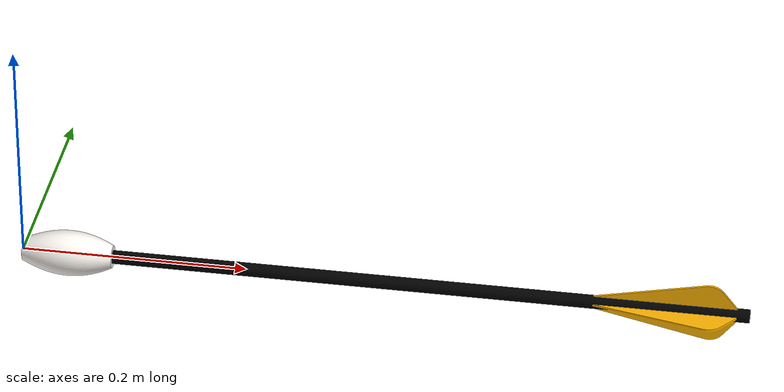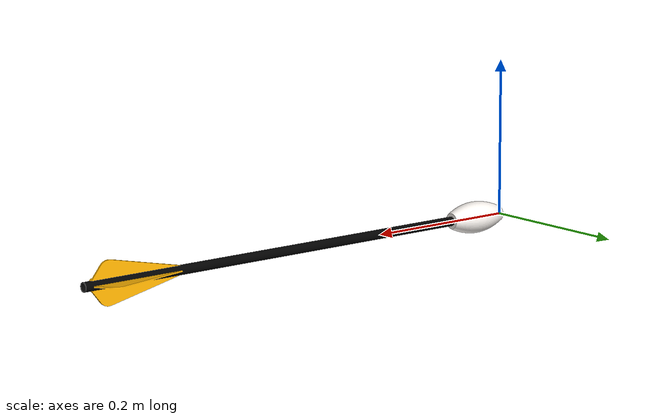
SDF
<?xml version='1.0'?>
<sdf version="1.4">
  <model name="arrow">
    <link name="link">
      <inertial>
        <mass>0.086</mass>
        <inertia>
          <ixx>0</ixx>
          <ixy>0</ixy>
          <ixz>0</ixz>
          <iyy>4e-6</iyy>
          <iyz>0</iyz>
          <izz>4e-6</izz>
        </inertia>
      </inertial>
      <collision name="collision">
        <geometry>
          <mesh>
            <uri>model://arrow/arrow.dae</uri>
          </mesh>
        </geometry>
      </collision>
      <visual name="visual">
        <geometry>
          <mesh>
            <uri>model://arrow/arrow.dae</uri>
          </mesh>
        </geometry>
      </visual>
    </link>
  </model>
</sdf>
